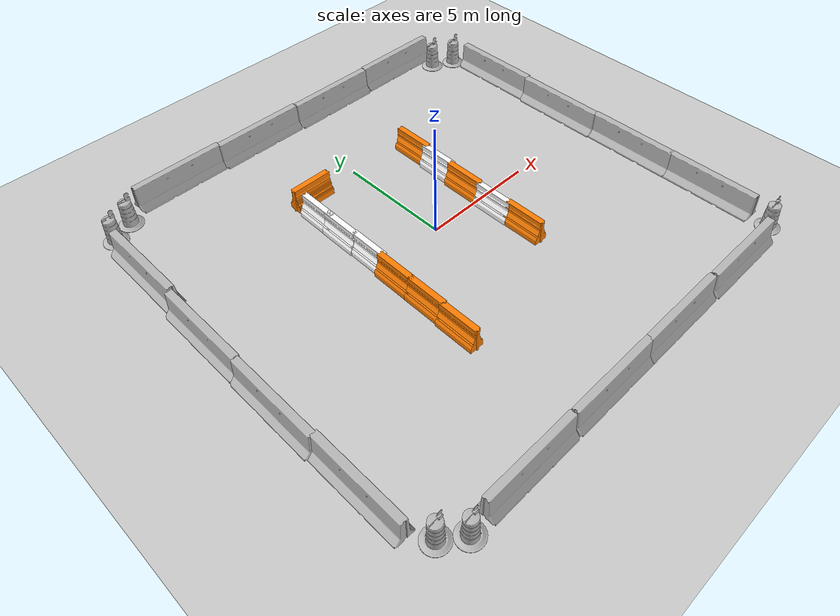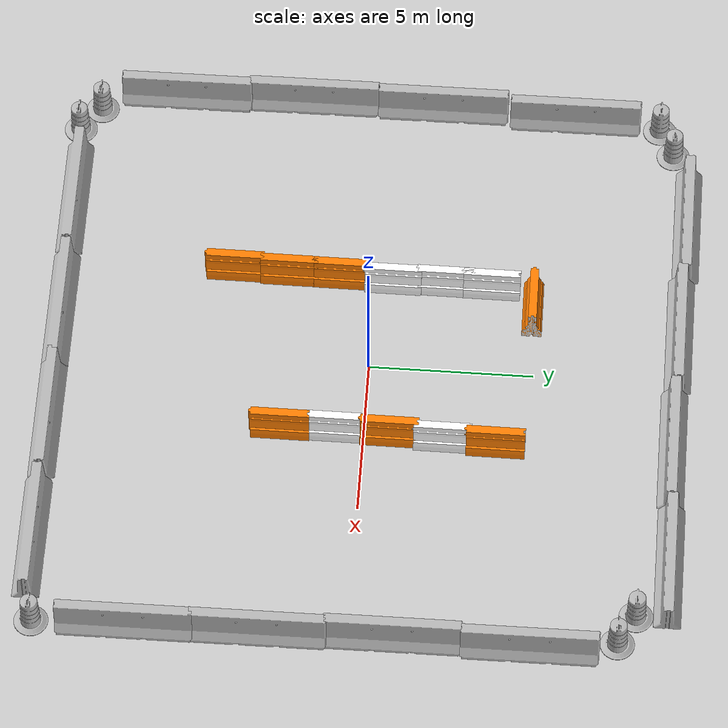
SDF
<sdf version="1.6">
 <world name="default">
  <light name="sun" type="directional">
   <pose>0 0 10 0 -0 0</pose>
   <diffuse>0.8 0.8 0.8 1</diffuse>
   <specular>0.2 0.2 0.2 1</specular>
   <attenuation>
    <range>1000</range>
    <constant>0.9</constant>
    <linear>0.01</linear>
    <quadratic>0.001</quadratic>
   </attenuation>
   <direction>-0.5 0.1 -0.9</direction>
  </light>
  <model name="ground_plane">
   <static>1</static>
   <link name="link">
    <collision name="collision">
     <geometry><plane><normal>0 0 1</normal><size>100 100</size></plane></geometry>
     <surface><friction><ode><mu>100</mu><mu2>50</mu2></ode></friction></surface>
    </collision>
    <visual name="visual">
     <cast_shadows>0</cast_shadows>
     <geometry><plane><normal>0 0 1</normal><size>100 100</size></plane></geometry>
     <material>
      <script><uri>file://media/materials/scripts/gazebo.material</uri><name>Gazebo/Grey</name></script>
     </material>
    </visual>
   </link>
  </model>
  <gravity>0 0 -9.8</gravity>
  <magnetic_field>6e-06 2.3e-05 -4.2e-05</magnetic_field>
  <atmosphere type="adiabatic"/>
  <physics name="default_physics" default="0" type="ode">
   <max_step_size>0.001</max_step_size>
   <real_time_factor>1</real_time_factor>
   <real_time_update_rate>1000</real_time_update_rate>
  </physics>
  <scene><ambient>0.4 0.4 0.4 1</ambient><background>0.7 0.7 0.7 1</background><shadows>1</shadows></scene>
  <spherical_coordinates>
   <surface_model>EARTH_WGS84</surface_model>
   <latitude_deg>0</latitude_deg>
   <longitude_deg>0</longitude_deg>
   <elevation>0</elevation>
   <heading_deg>0</heading_deg>
  </spherical_coordinates>
  <model name="jersey_barrier">
   <static>1</static>
   <link name="link">
    <visual name="visual">
     <geometry>
      <mesh><uri>model://jersey_barrier/meshes/jersey_barrier.dae</uri><scale>1 1 1</scale></mesh>
     </geometry>
    </visual>
    <collision name="upright">
     <pose>0 0 0.5715 0 -0 0</pose>
     <geometry><box><size>4.06542 0.3063 1.143</size></box></geometry>
    </collision>
    <collision name="base">
     <pose>0 0 0.032258 0 -0 0</pose>
     <geometry><box><size>4.06542 0.8107 0.064516</size></box></geometry>
    </collision>
    <collision name="base2">
     <pose>0 0 0.1 0 -0 0</pose>
     <geometry><box><size>4.06542 0.65 0.1</size></box></geometry>
    </collision>
    <collision name="base3">
     <pose>0 0 0.2 0 -0 0</pose>
     <geometry><box><size>4.06542 0.5 0.1</size></box></geometry>
    </collision>
    <collision name="left-angle">
     <pose>0 -0.224 0.2401 0.9 -0 0</pose>
     <geometry><box><size>4.06542 0.5 0.064516</size></box></geometry>
    </collision>
    <collision name="right-angle">
     <pose>0 0.224 0.2401 -0.9 0 0</pose>
     <geometry><box><size>4.06542 0.5 0.064516</size></box></geometry>
    </collision>
   </link>
   <pose>-5.65677 9.4608 0 0 -0 0</pose>
  </model>
  <model name="jersey_barrier_clone">
   <static>1</static>
   <link name="link">
    <visual name="visual">
     <geometry>
      <mesh><uri>model://jersey_barrier/meshes/jersey_barrier.dae</uri><scale>1 1 1</scale></mesh>
     </geometry>
    </visual>
    <collision name="upright">
     <pose>0 0 0.5715 0 -0 0</pose>
     <geometry><box><size>4.06542 0.3063 1.143</size></box></geometry>
    </collision>
    <collision name="base">
     <pose>0 0 0.032258 0 -0 0</pose>
     <geometry><box><size>4.06542 0.8107 0.064516</size></box></geometry>
    </collision>
    <collision name="base2">
     <pose>0 0 0.1 0 -0 0</pose>
     <geometry><box><size>4.06542 0.65 0.1</size></box></geometry>
    </collision>
    <collision name="base3">
     <pose>0 0 0.2 0 -0 0</pose>
     <geometry><box><size>4.06542 0.5 0.1</size></box></geometry>
    </collision>
    <collision name="left-angle">
     <pose>0 -0.224 0.2401 0.9 -0 0</pose>
     <geometry><box><size>4.06542 0.5 0.064516</size></box></geometry>
    </collision>
    <collision name="right-angle">
     <pose>0 0.224 0.2401 -0.9 0 0</pose>
     <geometry><box><size>4.06542 0.5 0.064516</size></box></geometry>
    </collision>
   </link>
   <pose>-1.65987 9.36075 0 0 -0 0</pose>
  </model>
  <model name="jersey_barrier_clone_0">
   <static>1</static>
   <link name="link">
    <visual name="visual">
     <geometry>
      <mesh><uri>model://jersey_barrier/meshes/jersey_barrier.dae</uri><scale>1 1 1</scale></mesh>
     </geometry>
    </visual>
    <collision name="upright">
     <pose>0 0 0.5715 0 -0 0</pose>
     <geometry><box><size>4.06542 0.3063 1.143</size></box></geometry>
    </collision>
    <collision name="base">
     <pose>0 0 0.032258 0 -0 0</pose>
     <geometry><box><size>4.06542 0.8107 0.064516</size></box></geometry>
    </collision>
    <collision name="base2">
     <pose>0 0 0.1 0 -0 0</pose>
     <geometry><box><size>4.06542 0.65 0.1</size></box></geometry>
    </collision>
    <collision name="base3">
     <pose>0 0 0.2 0 -0 0</pose>
     <geometry><box><size>4.06542 0.5 0.1</size></box></geometry>
    </collision>
    <collision name="left-angle">
     <pose>0 -0.224 0.2401 0.9 -0 0</pose>
     <geometry><box><size>4.06542 0.5 0.064516</size></box></geometry>
    </collision>
    <collision name="right-angle">
     <pose>0 0.224 0.2401 -0.9 0 0</pose>
     <geometry><box><size>4.06542 0.5 0.064516</size></box></geometry>
    </collision>
   </link>
   <pose>2.39773 9.29085 0 0 -0 0</pose>
  </model>
  <model name="jersey_barrier_clone_1">
   <static>1</static>
   <link name="link">
    <visual name="visual">
     <geometry>
      <mesh><uri>model://jersey_barrier/meshes/jersey_barrier.dae</uri><scale>1 1 1</scale></mesh>
     </geometry>
    </visual>
    <collision name="upright">
     <pose>0 0 0.5715 0 -0 0</pose>
     <geometry><box><size>4.06542 0.3063 1.143</size></box></geometry>
    </collision>
    <collision name="base">
     <pose>0 0 0.032258 0 -0 0</pose>
     <geometry><box><size>4.06542 0.8107 0.064516</size></box></geometry>
    </collision>
    <collision name="base2">
     <pose>0 0 0.1 0 -0 0</pose>
     <geometry><box><size>4.06542 0.65 0.1</size></box></geometry>
    </collision>
    <collision name="base3">
     <pose>0 0 0.2 0 -0 0</pose>
     <geometry><box><size>4.06542 0.5 0.1</size></box></geometry>
    </collision>
    <collision name="left-angle">
     <pose>0 -0.224 0.2401 0.9 -0 0</pose>
     <geometry><box><size>4.06542 0.5 0.064516</size></box></geometry>
    </collision>
    <collision name="right-angle">
     <pose>0 0.224 0.2401 -0.9 0 0</pose>
     <geometry><box><size>4.06542 0.5 0.064516</size></box></geometry>
    </collision>
   </link>
   <pose>6.45464 9.33993 0 0 -0 0</pose>
  </model>
  <model name="jersey_barrier_clone_3">
   <static>1</static>
   <link name="link">
    <visual name="visual">
     <geometry>
      <mesh><uri>model://jersey_barrier/meshes/jersey_barrier.dae</uri><scale>1 1 1</scale></mesh>
     </geometry>
    </visual>
    <collision name="upright">
     <pose>0 0 0.5715 0 -0 0</pose>
     <geometry><box><size>4.06542 0.3063 1.143</size></box></geometry>
    </collision>
    <collision name="base">
     <pose>0 0 0.032258 0 -0 0</pose>
     <geometry><box><size>4.06542 0.8107 0.064516</size></box></geometry>
    </collision>
    <collision name="base2">
     <pose>0 0 0.1 0 -0 0</pose>
     <geometry><box><size>4.06542 0.65 0.1</size></box></geometry>
    </collision>
    <collision name="base3">
     <pose>0 0 0.2 0 -0 0</pose>
     <geometry><box><size>4.06542 0.5 0.1</size></box></geometry>
    </collision>
    <collision name="left-angle">
     <pose>0 -0.224 0.2401 0.9 -0 0</pose>
     <geometry><box><size>4.06542 0.5 0.064516</size></box></geometry>
    </collision>
    <collision name="right-angle">
     <pose>0 0.224 0.2401 -0.9 0 0</pose>
     <geometry><box><size>4.06542 0.5 0.064516</size></box></geometry>
    </collision>
   </link>
   <pose>9.44656 5.35522 0 0 0 -1.56865</pose>
  </model>
  <model name="jersey_barrier_clone_3_clone">
   <static>1</static>
   <link name="link">
    <visual name="visual">
     <geometry>
      <mesh><uri>model://jersey_barrier/meshes/jersey_barrier.dae</uri><scale>1 1 1</scale></mesh>
     </geometry>
    </visual>
    <collision name="upright">
     <pose>0 0 0.5715 0 -0 0</pose>
     <geometry><box><size>4.06542 0.3063 1.143</size></box></geometry>
    </collision>
    <collision name="base">
     <pose>0 0 0.032258 0 -0 0</pose>
     <geometry><box><size>4.06542 0.8107 0.064516</size></box></geometry>
    </collision>
    <collision name="base2">
     <pose>0 0 0.1 0 -0 0</pose>
     <geometry><box><size>4.06542 0.65 0.1</size></box></geometry>
    </collision>
    <collision name="base3">
     <pose>0 0 0.2 0 -0 0</pose>
     <geometry><box><size>4.06542 0.5 0.1</size></box></geometry>
    </collision>
    <collision name="left-angle">
     <pose>0 -0.224 0.2401 0.9 -0 0</pose>
     <geometry><box><size>4.06542 0.5 0.064516</size></box></geometry>
    </collision>
    <collision name="right-angle">
     <pose>0 0.224 0.2401 -0.9 0 0</pose>
     <geometry><box><size>4.06542 0.5 0.064516</size></box></geometry>
    </collision>
   </link>
   <pose>9.3727 1.33119 0 0 0 -1.56865</pose>
  </model>
  <model name="jersey_barrier_clone_3_clone_0">
   <static>1</static>
   <link name="link">
    <visual name="visual">
     <geometry>
      <mesh><uri>model://jersey_barrier/meshes/jersey_barrier.dae</uri><scale>1 1 1</scale></mesh>
     </geometry>
    </visual>
    <collision name="upright">
     <pose>0 0 0.5715 0 -0 0</pose>
     <geometry><box><size>4.06542 0.3063 1.143</size></box></geometry>
    </collision>
    <collision name="base">
     <pose>0 0 0.032258 0 -0 0</pose>
     <geometry><box><size>4.06542 0.8107 0.064516</size></box></geometry>
    </collision>
    <collision name="base2">
     <pose>0 0 0.1 0 -0 0</pose>
     <geometry><box><size>4.06542 0.65 0.1</size></box></geometry>
    </collision>
    <collision name="base3">
     <pose>0 0 0.2 0 -0 0</pose>
     <geometry><box><size>4.06542 0.5 0.1</size></box></geometry>
    </collision>
    <collision name="left-angle">
     <pose>0 -0.224 0.2401 0.9 -0 0</pose>
     <geometry><box><size>4.06542 0.5 0.064516</size></box></geometry>
    </collision>
    <collision name="right-angle">
     <pose>0 0.224 0.2401 -0.9 0 0</pose>
     <geometry><box><size>4.06542 0.5 0.064516</size></box></geometry>
    </collision>
   </link>
   <pose>9.4315 -2.6268 0 0 0 -1.56865</pose>
  </model>
  <model name="jersey_barrier_clone_3_clone_1">
   <static>1</static>
   <link name="link">
    <visual name="visual">
     <geometry>
      <mesh><uri>model://jersey_barrier/meshes/jersey_barrier.dae</uri><scale>1 1 1</scale></mesh>
     </geometry>
    </visual>
    <collision name="upright">
     <pose>0 0 0.5715 0 -0 0</pose>
     <geometry><box><size>4.06542 0.3063 1.143</size></box></geometry>
    </collision>
    <collision name="base">
     <pose>0 0 0.032258 0 -0 0</pose>
     <geometry><box><size>4.06542 0.8107 0.064516</size></box></geometry>
    </collision>
    <collision name="base2">
     <pose>0 0 0.1 0 -0 0</pose>
     <geometry><box><size>4.06542 0.65 0.1</size></box></geometry>
    </collision>
    <collision name="base3">
     <pose>0 0 0.2 0 -0 0</pose>
     <geometry><box><size>4.06542 0.5 0.1</size></box></geometry>
    </collision>
    <collision name="left-angle">
     <pose>0 -0.224 0.2401 0.9 -0 0</pose>
     <geometry><box><size>4.06542 0.5 0.064516</size></box></geometry>
    </collision>
    <collision name="right-angle">
     <pose>0 0.224 0.2401 -0.9 0 0</pose>
     <geometry><box><size>4.06542 0.5 0.064516</size></box></geometry>
    </collision>
   </link>
   <pose>9.44969 -6.53485 0 0 0 -1.56865</pose>
  </model>
  <model name="jersey_barrier_clone_2_clone">
   <static>1</static>
   <link name="link">
    <visual name="visual">
     <geometry>
      <mesh><uri>model://jersey_barrier/meshes/jersey_barrier.dae</uri><scale>1 1 1</scale></mesh>
     </geometry>
    </visual>
    <collision name="upright">
     <pose>0 0 0.5715 0 -0 0</pose>
     <geometry><box><size>4.06542 0.3063 1.143</size></box></geometry>
    </collision>
    <collision name="base">
     <pose>0 0 0.032258 0 -0 0</pose>
     <geometry><box><size>4.06542 0.8107 0.064516</size></box></geometry>
    </collision>
    <collision name="base2">
     <pose>0 0 0.1 0 -0 0</pose>
     <geometry><box><size>4.06542 0.65 0.1</size></box></geometry>
    </collision>
    <collision name="base3">
     <pose>0 0 0.2 0 -0 0</pose>
     <geometry><box><size>4.06542 0.5 0.1</size></box></geometry>
    </collision>
    <collision name="left-angle">
     <pose>0 -0.224 0.2401 0.9 -0 0</pose>
     <geometry><box><size>4.06542 0.5 0.064516</size></box></geometry>
    </collision>
    <collision name="right-angle">
     <pose>0 0.224 0.2401 -0.9 0 0</pose>
     <geometry><box><size>4.06542 0.5 0.064516</size></box></geometry>
    </collision>
   </link>
   <pose>6.70657 -9.54347 0 0 -0 0</pose>
  </model>
  <model name="jersey_barrier_clone_2_clone_0">
   <static>1</static>
   <link name="link">
    <visual name="visual">
     <geometry>
      <mesh><uri>model://jersey_barrier/meshes/jersey_barrier.dae</uri><scale>1 1 1</scale></mesh>
     </geometry>
    </visual>
    <collision name="upright">
     <pose>0 0 0.5715 0 -0 0</pose>
     <geometry><box><size>4.06542 0.3063 1.143</size></box></geometry>
    </collision>
    <collision name="base">
     <pose>0 0 0.032258 0 -0 0</pose>
     <geometry><box><size>4.06542 0.8107 0.064516</size></box></geometry>
    </collision>
    <collision name="base2">
     <pose>0 0 0.1 0 -0 0</pose>
     <geometry><box><size>4.06542 0.65 0.1</size></box></geometry>
    </collision>
    <collision name="base3">
     <pose>0 0 0.2 0 -0 0</pose>
     <geometry><box><size>4.06542 0.5 0.1</size></box></geometry>
    </collision>
    <collision name="left-angle">
     <pose>0 -0.224 0.2401 0.9 -0 0</pose>
     <geometry><box><size>4.06542 0.5 0.064516</size></box></geometry>
    </collision>
    <collision name="right-angle">
     <pose>0 0.224 0.2401 -0.9 0 0</pose>
     <geometry><box><size>4.06542 0.5 0.064516</size></box></geometry>
    </collision>
   </link>
   <pose>2.59616 -9.50928 0 0 -0 0</pose>
  </model>
  <model name="jersey_barrier_clone_2_clone_1">
   <static>1</static>
   <link name="link">
    <visual name="visual">
     <geometry>
      <mesh><uri>model://jersey_barrier/meshes/jersey_barrier.dae</uri><scale>1 1 1</scale></mesh>
     </geometry>
    </visual>
    <collision name="upright">
     <pose>0 0 0.5715 0 -0 0</pose>
     <geometry><box><size>4.06542 0.3063 1.143</size></box></geometry>
    </collision>
    <collision name="base">
     <pose>0 0 0.032258 0 -0 0</pose>
     <geometry><box><size>4.06542 0.8107 0.064516</size></box></geometry>
    </collision>
    <collision name="base2">
     <pose>0 0 0.1 0 -0 0</pose>
     <geometry><box><size>4.06542 0.65 0.1</size></box></geometry>
    </collision>
    <collision name="base3">
     <pose>0 0 0.2 0 -0 0</pose>
     <geometry><box><size>4.06542 0.5 0.1</size></box></geometry>
    </collision>
    <collision name="left-angle">
     <pose>0 -0.224 0.2401 0.9 -0 0</pose>
     <geometry><box><size>4.06542 0.5 0.064516</size></box></geometry>
    </collision>
    <collision name="right-angle">
     <pose>0 0.224 0.2401 -0.9 0 0</pose>
     <geometry><box><size>4.06542 0.5 0.064516</size></box></geometry>
    </collision>
   </link>
   <pose>-1.33414 -9.50852 0 0 -0 0</pose>
  </model>
  <model name="jersey_barrier_clone_2_clone_2">
   <static>1</static>
   <link name="link">
    <visual name="visual">
     <geometry>
      <mesh><uri>model://jersey_barrier/meshes/jersey_barrier.dae</uri><scale>1 1 1</scale></mesh>
     </geometry>
    </visual>
    <collision name="upright">
     <pose>0 0 0.5715 0 -0 0</pose>
     <geometry><box><size>4.06542 0.3063 1.143</size></box></geometry>
    </collision>
    <collision name="base">
     <pose>0 0 0.032258 0 -0 0</pose>
     <geometry><box><size>4.06542 0.8107 0.064516</size></box></geometry>
    </collision>
    <collision name="base2">
     <pose>0 0 0.1 0 -0 0</pose>
     <geometry><box><size>4.06542 0.65 0.1</size></box></geometry>
    </collision>
    <collision name="base3">
     <pose>0 0 0.2 0 -0 0</pose>
     <geometry><box><size>4.06542 0.5 0.1</size></box></geometry>
    </collision>
    <collision name="left-angle">
     <pose>0 -0.224 0.2401 0.9 -0 0</pose>
     <geometry><box><size>4.06542 0.5 0.064516</size></box></geometry>
    </collision>
    <collision name="right-angle">
     <pose>0 0.224 0.2401 -0.9 0 0</pose>
     <geometry><box><size>4.06542 0.5 0.064516</size></box></geometry>
    </collision>
   </link>
   <pose>-5.44605 -9.49634 0 0 -0 0</pose>
  </model>
  <model name="jersey_barrier_clone_3_clone_1_clone">
   <static>1</static>
   <link name="link">
    <visual name="visual">
     <geometry>
      <mesh><uri>model://jersey_barrier/meshes/jersey_barrier.dae</uri><scale>1 1 1</scale></mesh>
     </geometry>
    </visual>
    <collision name="upright">
     <pose>0 0 0.5715 0 -0 0</pose>
     <geometry><box><size>4.06542 0.3063 1.143</size></box></geometry>
    </collision>
    <collision name="base">
     <pose>0 0 0.032258 0 -0 0</pose>
     <geometry><box><size>4.06542 0.8107 0.064516</size></box></geometry>
    </collision>
    <collision name="base2">
     <pose>0 0 0.1 0 -0 0</pose>
     <geometry><box><size>4.06542 0.65 0.1</size></box></geometry>
    </collision>
    <collision name="base3">
     <pose>0 0 0.2 0 -0 0</pose>
     <geometry><box><size>4.06542 0.5 0.1</size></box></geometry>
    </collision>
    <collision name="left-angle">
     <pose>0 -0.224 0.2401 0.9 -0 0</pose>
     <geometry><box><size>4.06542 0.5 0.064516</size></box></geometry>
    </collision>
    <collision name="right-angle">
     <pose>0 0.224 0.2401 -0.9 0 0</pose>
     <geometry><box><size>4.06542 0.5 0.064516</size></box></geometry>
    </collision>
   </link>
   <pose>-9.54289 -6.33149 0 0 0 -1.56865</pose>
  </model>
  <model name="jersey_barrier_clone_3_clone_1_clone_0">
   <static>1</static>
   <link name="link">
    <visual name="visual">
     <geometry>
      <mesh><uri>model://jersey_barrier/meshes/jersey_barrier.dae</uri><scale>1 1 1</scale></mesh>
     </geometry>
    </visual>
    <collision name="upright">
     <pose>0 0 0.5715 0 -0 0</pose>
     <geometry><box><size>4.06542 0.3063 1.143</size></box></geometry>
    </collision>
    <collision name="base">
     <pose>0 0 0.032258 0 -0 0</pose>
     <geometry><box><size>4.06542 0.8107 0.064516</size></box></geometry>
    </collision>
    <collision name="base2">
     <pose>0 0 0.1 0 -0 0</pose>
     <geometry><box><size>4.06542 0.65 0.1</size></box></geometry>
    </collision>
    <collision name="base3">
     <pose>0 0 0.2 0 -0 0</pose>
     <geometry><box><size>4.06542 0.5 0.1</size></box></geometry>
    </collision>
    <collision name="left-angle">
     <pose>0 -0.224 0.2401 0.9 -0 0</pose>
     <geometry><box><size>4.06542 0.5 0.064516</size></box></geometry>
    </collision>
    <collision name="right-angle">
     <pose>0 0.224 0.2401 -0.9 0 0</pose>
     <geometry><box><size>4.06542 0.5 0.064516</size></box></geometry>
    </collision>
   </link>
   <pose>-9.6221 -2.35336 0 0 0 -1.56865</pose>
  </model>
  <model name="jersey_barrier_clone_3_clone_1_clone_1">
   <static>1</static>
   <link name="link">
    <visual name="visual">
     <geometry>
      <mesh><uri>model://jersey_barrier/meshes/jersey_barrier.dae</uri><scale>1 1 1</scale></mesh>
     </geometry>
    </visual>
    <collision name="upright">
     <pose>0 0 0.5715 0 -0 0</pose>
     <geometry><box><size>4.06542 0.3063 1.143</size></box></geometry>
    </collision>
    <collision name="base">
     <pose>0 0 0.032258 0 -0 0</pose>
     <geometry><box><size>4.06542 0.8107 0.064516</size></box></geometry>
    </collision>
    <collision name="base2">
     <pose>0 0 0.1 0 -0 0</pose>
     <geometry><box><size>4.06542 0.65 0.1</size></box></geometry>
    </collision>
    <collision name="base3">
     <pose>0 0 0.2 0 -0 0</pose>
     <geometry><box><size>4.06542 0.5 0.1</size></box></geometry>
    </collision>
    <collision name="left-angle">
     <pose>0 -0.224 0.2401 0.9 -0 0</pose>
     <geometry><box><size>4.06542 0.5 0.064516</size></box></geometry>
    </collision>
    <collision name="right-angle">
     <pose>0 0.224 0.2401 -0.9 0 0</pose>
     <geometry><box><size>4.06542 0.5 0.064516</size></box></geometry>
    </collision>
   </link>
   <pose>-9.58952 1.69745 0 0 0 -1.56865</pose>
  </model>
  <model name="jersey_barrier_clone_3_clone_1_clone_2">
   <static>1</static>
   <link name="link">
    <visual name="visual">
     <geometry>
      <mesh><uri>model://jersey_barrier/meshes/jersey_barrier.dae</uri><scale>1 1 1</scale></mesh>
     </geometry>
    </visual>
    <collision name="upright">
     <pose>0 0 0.5715 0 -0 0</pose>
     <geometry><box><size>4.06542 0.3063 1.143</size></box></geometry>
    </collision>
    <collision name="base">
     <pose>0 0 0.032258 0 -0 0</pose>
     <geometry><box><size>4.06542 0.8107 0.064516</size></box></geometry>
    </collision>
    <collision name="base2">
     <pose>0 0 0.1 0 -0 0</pose>
     <geometry><box><size>4.06542 0.65 0.1</size></box></geometry>
    </collision>
    <collision name="base3">
     <pose>0 0 0.2 0 -0 0</pose>
     <geometry><box><size>4.06542 0.5 0.1</size></box></geometry>
    </collision>
    <collision name="left-angle">
     <pose>0 -0.224 0.2401 0.9 -0 0</pose>
     <geometry><box><size>4.06542 0.5 0.064516</size></box></geometry>
    </collision>
    <collision name="right-angle">
     <pose>0 0.224 0.2401 -0.9 0 0</pose>
     <geometry><box><size>4.06542 0.5 0.064516</size></box></geometry>
    </collision>
   </link>
   <pose>-9.44715 5.83721 0 0 0 -1.56865</pose>
  </model>
  <model name="Construction Barrel">
   <link name="link">
    <inertial>
     <pose>0 0 0.4 0 -0 0</pose>
     <mass>500</mass>
     <inertia><ixx>51.2096</ixx><iyy>51.2096</iyy><izz>25</izz><ixy>0</ixy><ixz>0</ixz><iyz>0</iyz></inertia>
    </inertial>
    <collision name="collision">
     <geometry>
      <mesh><uri>model://construction_barrel/meshes/construction_barrel.dae</uri><scale>1 1 1</scale></mesh>
     </geometry>
    </collision>
    <visual name="visual">
     <geometry>
      <mesh><uri>model://construction_barrel/meshes/construction_barrel.dae</uri><scale>1 1 1</scale></mesh>
     </geometry>
    </visual>
   </link>
   <pose>9.07448 7.91063 0 0 0 -3.8e-05</pose>
  </model>
  <model name="Construction Barrel_0">
   <link name="link">
    <inertial>
     <pose>0 0 0.4 0 -0 0</pose>
     <mass>500</mass>
     <inertia><ixx>51.2096</ixx><iyy>51.2096</iyy><izz>25</izz><ixy>0</ixy><ixz>0</ixz><iyz>0</iyz></inertia>
    </inertial>
    <collision name="collision">
     <geometry>
      <mesh><uri>model://construction_barrel/meshes/construction_barrel.dae</uri><scale>1 1 1</scale></mesh>
     </geometry>
    </collision>
    <visual name="visual">
     <geometry>
      <mesh><uri>model://construction_barrel/meshes/construction_barrel.dae</uri><scale>1 1 1</scale></mesh>
     </geometry>
    </visual>
   </link>
   <pose>8.12833 8.41643 0 0 0 -3e-05</pose>
  </model>
  <model name="Construction Barrel_1">
   <link name="link">
    <inertial>
     <pose>0 0 0.4 0 -0 0</pose>
     <mass>500</mass>
     <inertia><ixx>51.2096</ixx><iyy>51.2096</iyy><izz>25</izz><ixy>0</ixy><ixz>0</ixz><iyz>0</iyz></inertia>
    </inertial>
    <collision name="collision">
     <geometry>
      <mesh><uri>model://construction_barrel/meshes/construction_barrel.dae</uri><scale>1 1 1</scale></mesh>
     </geometry>
    </collision>
    <visual name="visual">
     <geometry>
      <mesh><uri>model://construction_barrel/meshes/construction_barrel.dae</uri><scale>1 1 1</scale></mesh>
     </geometry>
    </visual>
   </link>
   <pose>-9.27253 8.48399 1e-06 3e-06 2e-06 -3.1e-05</pose>
  </model>
  <model name="Construction Barrel_2">
   <link name="link">
    <inertial>
     <pose>0 0 0.4 0 -0 0</pose>
     <mass>500</mass>
     <inertia><ixx>51.2096</ixx><iyy>51.2096</iyy><izz>25</izz><ixy>0</ixy><ixz>0</ixz><iyz>0</iyz></inertia>
    </inertial>
    <collision name="collision">
     <geometry>
      <mesh><uri>model://construction_barrel/meshes/construction_barrel.dae</uri><scale>1 1 1</scale></mesh>
     </geometry>
    </collision>
    <visual name="visual">
     <geometry>
      <mesh><uri>model://construction_barrel/meshes/construction_barrel.dae</uri><scale>1 1 1</scale></mesh>
     </geometry>
    </visual>
   </link>
   <pose>-8.34356 8.93861 -1e-06 1e-06 -9e-06 -2.6e-05</pose>
  </model>
  <model name="Construction Barrel_3">
   <link name="link">
    <inertial>
     <pose>0 0 0.4 0 -0 0</pose>
     <mass>500</mass>
     <inertia><ixx>51.2096</ixx><iyy>51.2096</iyy><izz>25</izz><ixy>0</ixy><ixz>0</ixz><iyz>0</iyz></inertia>
    </inertial>
    <collision name="collision">
     <geometry>
      <mesh><uri>model://construction_barrel/meshes/construction_barrel.dae</uri><scale>1 1 1</scale></mesh>
     </geometry>
    </collision>
    <visual name="visual">
     <geometry>
      <mesh><uri>model://construction_barrel/meshes/construction_barrel.dae</uri><scale>1 1 1</scale></mesh>
     </geometry>
    </visual>
   </link>
   <pose>9.45369 -9.29425 1e-06 3e-06 2e-06 -2.7e-05</pose>
  </model>
  <model name="Construction Barrel_4">
   <link name="link">
    <inertial>
     <pose>0 0 0.4 0 -0 0</pose>
     <mass>500</mass>
     <inertia><ixx>51.2096</ixx><iyy>51.2096</iyy><izz>25</izz><ixy>0</ixy><ixz>0</ixz><iyz>0</iyz></inertia>
    </inertial>
    <collision name="collision">
     <geometry>
      <mesh><uri>model://construction_barrel/meshes/construction_barrel.dae</uri><scale>1 1 1</scale></mesh>
     </geometry>
    </collision>
    <visual name="visual">
     <geometry>
      <mesh><uri>model://construction_barrel/meshes/construction_barrel.dae</uri><scale>1 1 1</scale></mesh>
     </geometry>
    </visual>
   </link>
   <pose>-8.13313 -9.57169 -5e-06 -9e-06 -9e-06 -0.000428</pose>
  </model>
  <model name="Construction Barrel_5">
   <link name="link">
    <inertial>
     <pose>0 0 0.4 0 -0 0</pose>
     <mass>500</mass>
     <inertia><ixx>51.2096</ixx><iyy>51.2096</iyy><izz>25</izz><ixy>0</ixy><ixz>0</ixz><iyz>0</iyz></inertia>
    </inertial>
    <collision name="collision">
     <geometry>
      <mesh><uri>model://construction_barrel/meshes/construction_barrel.dae</uri><scale>1 1 1</scale></mesh>
     </geometry>
    </collision>
    <visual name="visual">
     <geometry>
      <mesh><uri>model://construction_barrel/meshes/construction_barrel.dae</uri><scale>1 1 1</scale></mesh>
     </geometry>
    </visual>
   </link>
   <pose>-8.93841 -8.96001 0 0 0 -0.000307</pose>
  </model>
  <model name="drc_practice_white_jersey_barrier">
   <static>1</static>
   <link name="link">
    <visual name="visual">
     <geometry>
      <mesh>
       <uri>model://drc_practice_white_jersey_barrier/meshes/jersey_barrier.dae</uri>
       <scale>1 1 1</scale>
      </mesh>
     </geometry>
    </visual>
    <collision name="collision">
     <geometry>
      <mesh>
       <uri>model://drc_practice_white_jersey_barrier/meshes/jersey_barrier.dae</uri>
       <scale>1 1 1</scale>
      </mesh>
     </geometry>
    </collision>
   </link>
   <pose>-2.98538 3.57125 0 0 -0 0</pose>
  </model>
  <model name="drc_practice_white_jersey_barrier_0">
   <static>1</static>
   <link name="link">
    <visual name="visual">
     <geometry>
      <mesh>
       <uri>model://drc_practice_white_jersey_barrier/meshes/jersey_barrier.dae</uri>
       <scale>1 1 1</scale>
      </mesh>
     </geometry>
    </visual>
    <collision name="collision">
     <geometry>
      <mesh>
       <uri>model://drc_practice_white_jersey_barrier/meshes/jersey_barrier.dae</uri>
       <scale>1 1 1</scale>
      </mesh>
     </geometry>
    </collision>
   </link>
   <pose>-3.00105 2.17109 0 0 -0 0</pose>
  </model>
  <model name="drc_practice_white_jersey_barrier_1">
   <static>1</static>
   <link name="link">
    <visual name="visual">
     <geometry>
      <mesh>
       <uri>model://drc_practice_white_jersey_barrier/meshes/jersey_barrier.dae</uri>
       <scale>1 1 1</scale>
      </mesh>
     </geometry>
    </visual>
    <collision name="collision">
     <geometry>
      <mesh>
       <uri>model://drc_practice_white_jersey_barrier/meshes/jersey_barrier.dae</uri>
       <scale>1 1 1</scale>
      </mesh>
     </geometry>
    </collision>
   </link>
   <pose>-2.98209 0.550286 0 0 -0 0</pose>
  </model>
  <model name="drc_practice_organge_jersey_barrier">
   <static>1</static>
   <link name="link">
    <visual name="visual">
     <geometry>
      <mesh>
       <uri>model://drc_practice_orange_jersey_barrier/meshes/jersey_barrier.dae</uri>
       <scale>1 1 1</scale>
      </mesh>
     </geometry>
    </visual>
    <collision name="collision">
     <geometry>
      <mesh>
       <uri>model://drc_practice_orange_jersey_barrier/meshes/jersey_barrier.dae</uri>
       <scale>1 1 1</scale>
      </mesh>
     </geometry>
    </collision>
   </link>
   <pose>-3.06546 -0.997775 0 0 -0 0</pose>
  </model>
  <model name="drc_practice_organge_jersey_barrier_0">
   <static>1</static>
   <link name="link">
    <visual name="visual">
     <geometry>
      <mesh>
       <uri>model://drc_practice_orange_jersey_barrier/meshes/jersey_barrier.dae</uri>
       <scale>1 1 1</scale>
      </mesh>
     </geometry>
    </visual>
    <collision name="collision">
     <geometry>
      <mesh>
       <uri>model://drc_practice_orange_jersey_barrier/meshes/jersey_barrier.dae</uri>
       <scale>1 1 1</scale>
      </mesh>
     </geometry>
    </collision>
   </link>
   <pose>-3.08015 -2.63698 0 0 -0 0</pose>
  </model>
  <model name="drc_practice_organge_jersey_barrier_1">
   <static>1</static>
   <link name="link">
    <visual name="visual">
     <geometry>
      <mesh>
       <uri>model://drc_practice_orange_jersey_barrier/meshes/jersey_barrier.dae</uri>
       <scale>1 1 1</scale>
      </mesh>
     </geometry>
    </visual>
    <collision name="collision">
     <geometry>
      <mesh>
       <uri>model://drc_practice_orange_jersey_barrier/meshes/jersey_barrier.dae</uri>
       <scale>1 1 1</scale>
      </mesh>
     </geometry>
    </collision>
   </link>
   <pose>-3.13596 -4.2859 0 0 -0 0</pose>
  </model>
  <model name="drc_practice_organge_jersey_barrier_2">
   <static>1</static>
   <link name="link">
    <visual name="visual">
     <geometry>
      <mesh>
       <uri>model://drc_practice_orange_jersey_barrier/meshes/jersey_barrier.dae</uri>
       <scale>1 1 1</scale>
      </mesh>
     </geometry>
    </visual>
    <collision name="collision">
     <geometry>
      <mesh>
       <uri>model://drc_practice_orange_jersey_barrier/meshes/jersey_barrier.dae</uri>
       <scale>1 1 1</scale>
      </mesh>
     </geometry>
    </collision>
   </link>
   <pose>2.63172 3.98976 0 0 -0 0</pose>
  </model>
  <model name="drc_practice_white_jersey_barrier_2">
   <static>1</static>
   <link name="link">
    <visual name="visual">
     <geometry>
      <mesh>
       <uri>model://drc_practice_white_jersey_barrier/meshes/jersey_barrier.dae</uri>
       <scale>1 1 1</scale>
      </mesh>
     </geometry>
    </visual>
    <collision name="collision">
     <geometry>
      <mesh>
       <uri>model://drc_practice_white_jersey_barrier/meshes/jersey_barrier.dae</uri>
       <scale>1 1 1</scale>
      </mesh>
     </geometry>
    </collision>
   </link>
   <pose>2.5516 2.39335 0 0 -0 0</pose>
  </model>
  <model name="drc_practice_organge_jersey_barrier_3">
   <static>1</static>
   <link name="link">
    <visual name="visual">
     <geometry>
      <mesh>
       <uri>model://drc_practice_orange_jersey_barrier/meshes/jersey_barrier.dae</uri>
       <scale>1 1 1</scale>
      </mesh>
     </geometry>
    </visual>
    <collision name="collision">
     <geometry>
      <mesh>
       <uri>model://drc_practice_orange_jersey_barrier/meshes/jersey_barrier.dae</uri>
       <scale>1 1 1</scale>
      </mesh>
     </geometry>
    </collision>
   </link>
   <pose>2.46744 0.797119 0 0 -0 0</pose>
  </model>
  <model name="drc_practice_white_jersey_barrier_3">
   <static>1</static>
   <link name="link">
    <visual name="visual">
     <geometry>
      <mesh>
       <uri>model://drc_practice_white_jersey_barrier/meshes/jersey_barrier.dae</uri>
       <scale>1 1 1</scale>
      </mesh>
     </geometry>
    </visual>
    <collision name="collision">
     <geometry>
      <mesh>
       <uri>model://drc_practice_white_jersey_barrier/meshes/jersey_barrier.dae</uri>
       <scale>1 1 1</scale>
      </mesh>
     </geometry>
    </collision>
   </link>
   <pose>2.41426 -0.903251 0 0 -0 0</pose>
  </model>
  <model name="drc_practice_organge_jersey_barrier_4">
   <static>1</static>
   <link name="link">
    <visual name="visual">
     <geometry>
      <mesh>
       <uri>model://drc_practice_orange_jersey_barrier/meshes/jersey_barrier.dae</uri>
       <scale>1 1 1</scale>
      </mesh>
     </geometry>
    </visual>
    <collision name="collision">
     <geometry>
      <mesh>
       <uri>model://drc_practice_orange_jersey_barrier/meshes/jersey_barrier.dae</uri>
       <scale>1 1 1</scale>
      </mesh>
     </geometry>
    </collision>
   </link>
   <pose>2.43087 -2.49624 0 0 -0 0</pose>
  </model>
  <model name="drc_practice_organge_jersey_barrier_5">
   <static>1</static>
   <link name="link">
    <visual name="visual">
     <geometry>
      <mesh>
       <uri>model://drc_practice_orange_jersey_barrier/meshes/jersey_barrier.dae</uri>
       <scale>1 1 1</scale>
      </mesh>
     </geometry>
    </visual>
    <collision name="collision">
     <geometry>
      <mesh>
       <uri>model://drc_practice_orange_jersey_barrier/meshes/jersey_barrier.dae</uri>
       <scale>1 1 1</scale>
      </mesh>
     </geometry>
    </collision>
   </link>
   <pose>-2.32284 4.86155 0 0 0 -1.56117</pose>
  </model>
 </world>
</sdf>
